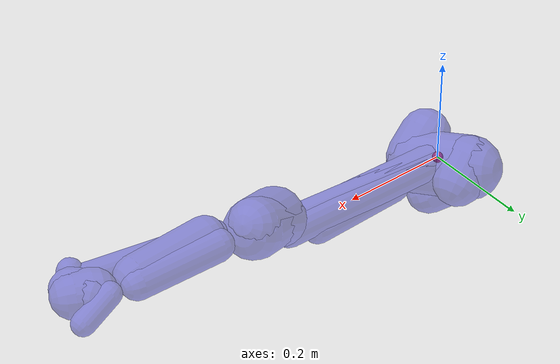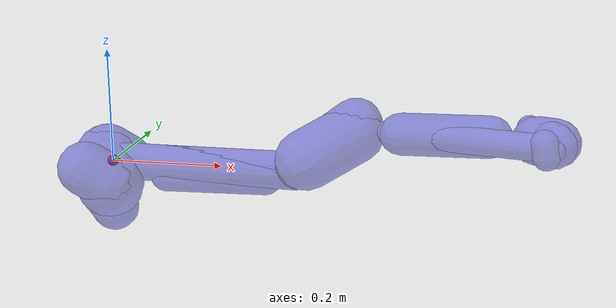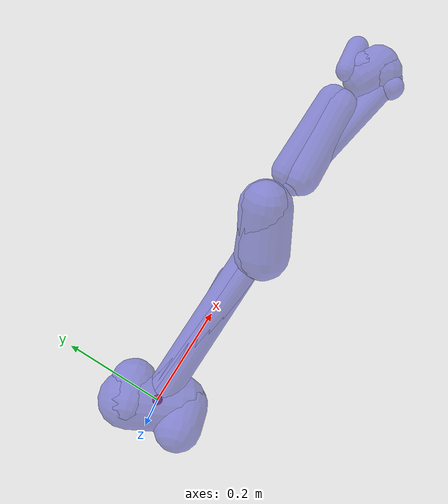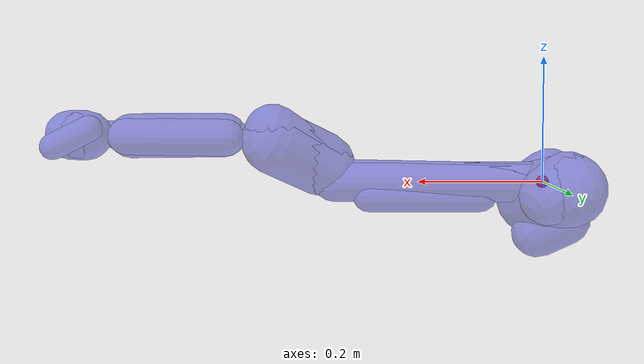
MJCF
<mujoco model="spot arm">
  <compiler angle="radian"/>
  <option integrator="implicitfast" cone="elliptic" impratio="100"/>
  <visual>
    <global ellipsoidinertia="true"/>
  </visual>
  <asset>
    <material name="BlackAbs" rgba="0.1 0.1 0.1 1"/>
    <material name="wrap" rgba="0.878431 0.666666 0.227450 1"/>
    <mesh name="arm_link_sh0" file="meshes/arm_link_sh0.obj"/>
    <mesh name="arm_link_sh1_0" file="meshes/arm_link_sh1_0.obj"/>
    <mesh name="arm_link_sh1_1" file="meshes/arm_link_sh1_1.obj"/>
    <mesh name="arm_link_hr0" file="meshes/arm_link_hr0.obj"/>
    <mesh name="arm_link_el0" file="meshes/arm_link_el0.obj"/>
    <mesh name="arm_link_el1_0" file="meshes/arm_link_el1_0.obj"/>
    <mesh name="arm_link_el1_1" file="meshes/arm_link_el1_1.obj"/>
    <mesh name="arm_link_wr0_0" file="meshes/arm_link_wr0_0.obj"/>
    <mesh name="arm_link_wr0_1" file="meshes/arm_link_wr0_1.obj"/>
    <mesh name="arm_link_sh0_base_coll" file="meshes/arm_link_sh0_base.obj"/>
    <mesh name="arm_link_sh0_left_motor_coll" file="meshes/arm_link_sh0_left_motor.obj"/>
    <mesh name="arm_link_sh0_right_motor_coll" file="meshes/arm_link_sh0_right_motor.obj"/>
    <mesh name="arm_link_hr0_coll" file="meshes/arm_link_hr0_coll.obj"/>
    <mesh name="arm_link_el0_coll" file="meshes/arm_link_el0_coll.obj"/>
    <mesh name="arm_link_el1_main_coll" file="meshes/arm_link_el1_main.obj"/>
    <mesh name="arm_link_el1_lip_coll" file="meshes/arm_link_el1_lip.obj"/>
    <mesh name="arm_link_wr0_coll" file="meshes/arm_link_wr0.obj"/>
  </asset>
  <default>
    <default class="spot_arm">
      <geom solref="0.004 1"/>
      <joint actuatorfrcrange="-1000 1000"/>
      <position kp="500" kv="40" inheritrange="1"/>
      <motor ctrlrange="-33.5 33.5" ctrllimited="true"/>
    </default>
    <default class="spot_arm_visual">
      <joint actuatorfrcrange="-1000 1000"/>
      <position kp="500" kv="40" inheritrange="1"/>
      <geom group="1" type="mesh" contype="0" conaffinity="0" solref="0.004 1"/>
    </default>
    <default class="spot_arm_collision">
      <joint actuatorfrcrange="-1000 1000"/>
      <position kp="500" kv="40" inheritrange="1"/>
      <geom group="0" type="mesh" solref="0.004 1"/>
    </default>
  </default>
  <worldbody>
    <body name="base" pos="0 0 0">
      <body name="arm_link_sh0" pos="0 0 0">
        <site name="right_center" pos="0 0 0" size="0.01" rgba="1 0.3 0.3 1" group="2"/>
        <inertial pos="-0.0123727 -4.52114e-05 -0.021032" quat="0.707107 0.707107 0 0" mass="2.3364" diaginertia="0.0090143 0.00778748 0.0058351"/>
        <joint name="arm_sh0" axis="0 0 1" range="-2.61799 3.14159"/>
        <geom material="BlackAbs" class="spot_arm_visual" rgba="0.2 0.2 0.8 0.5" type="capsule" pos="-0.011821 0.005452 -0.019226" quat="0.627623 0.707951 0.323875 0.000000" size="0.058716 0.050857"/>
        <geom class="spot_arm_collision" type="capsule" pos="-0.013899 0.001042 -0.070806" quat="0.518994 0.516899 0.680779 0.000000" size="0.041250 0.026800" rgba="0.2 0.2 0.8 0.5"/>
        <geom class="spot_arm_collision" type="capsule" pos="-0.013390 0.053024 -0.005173" quat="0.469976 -0.290060 0.833660 0.000000" size="0.046700 0.020071" rgba="0.2 0.2 0.8 0.5"/>
        <geom class="spot_arm_collision" type="capsule" pos="-0.005870 -0.057827 -0.010397" quat="0.481107 -0.221473 0.848225 0.000000" size="0.047277 0.024408" rgba="0.2 0.2 0.8 0.5"/>
        <body name="arm_link_sh1">
          <inertial pos="2.41764e-05 2.41161e-06 -1.00591e-05" quat="1 1 -1 1" mass="0.2596" diaginertia="0.00020385 0.000202928 0.000170786"/>
          <joint name="arm_sh1" axis="0 1 0" range="-3.14159 0.523599"/>
          <geom material="wrap" class="spot_arm_visual" type="capsule" pos="0.189143 0.000261 -0.021798" quat="0.705025 0.030152 -0.708541 0.000000" size="0.026979 0.089854" rgba="0.2 0.2 0.8 0.5"/>
          <geom material="BlackAbs" class="spot_arm_visual" type="capsule" pos="0.168913 -0.002070 0.007118" quat="0.701023 -0.039055 -0.712068 0.000000" size="0.026229 0.172902" rgba="0.2 0.2 0.8 0.5"/>
          <body name="arm_link_hr0">
            <inertial pos="0.17047 -0.0019251 4.48389e-05" quat="0 1 0 1" mass="1e-06" diaginertia="1.16111e-08 1.14871e-08 6.31263e-10"/>
            <geom class="spot_arm_collision" type="capsule" pos="0.169055 -0.002162 0.000078" quat="0.707653 0.014605 0.706409 0.000000" size="0.032635 0.166504" rgba="0.2 0.2 0.8 0.5"/>
            <body name="arm_link_el0" pos="0.3385 0 0">
              <inertial pos="0.0553741 0.000236034 0.048272" quat="1 1 1 1" mass="0.725" diaginertia="0.00200479 0.00197228 0.000821537"/>
              <joint name="arm_el0" axis="0 1 0" range="0 3.14159"/>
              <geom material="BlackAbs" class="spot_arm_visual" type="capsule" pos="0.049505 0.005172 0.049434" quat="0.878509 -0.194351 0.436405 0.000000" size="0.045078 0.058619" rgba="0.2 0.2 0.8 0.5"/>
              <geom class="spot_arm_collision" type="capsule" pos="0.053511 -0.000455 0.046599" quat="0.838625 -0.271224 0.472382 0.000000" size="0.052496 0.048607" rgba="0.2 0.2 0.8 0.5"/>
              <body name="arm_link_el1" pos="0.4033 0 0.075">
                <inertial pos="-0.125784 -0.0136845 0.000101579" quat="0 1 0 1" mass="0.725" diaginertia="0.00451592 0.00440245 0.000625481"/>
                <joint name="arm_el1" axis="1 0 0" range="-2.79253 2.79253"/>
                <geom material="wrap" class="spot_arm_visual" type="capsule" pos="-0.156192 0.022387 -0.001299" quat="0.703129 -0.009166 -0.711003 0.000000" size="0.029396 0.078777" rgba="0.2 0.2 0.8 0.5"/>
                <geom material="BlackAbs" class="spot_arm_visual" type="capsule" pos="-0.118156 -0.024876 0.000485" quat="0.709101 -0.129915 -0.693035 0.000000" size="0.022493 0.132307" rgba="0.2 0.2 0.8 0.5"/>
                <geom class="spot_arm_collision" type="capsule" pos="-0.156714 0.000501 0.000003" quat="0.705765 -0.044817 0.707027 0.000000" size="0.035727 0.073779" rgba="0.2 0.2 0.8 0.5"/>
                <geom class="spot_arm_collision" type="capsule" pos="-0.000277 -0.058461 -0.000014" quat="0.100095 0.003291 0.994972 0.000000" size="0.022318 0.010954" rgba="0.2 0.2 0.8 0.5"/>
                <body name="arm_link_wr0">
                  <inertial pos="0.00821068 -0.012051 3.14348e-05" quat="1 1 -1 1" mass="0.98" diaginertia="0.00123549 0.000985132 0.000891615"/>
                  <joint name="arm_wr0" axis="0 1 0" range="-1.8326 1.8326"/>
                  <geom material="wrap" class="spot_arm_visual" type="capsule" pos="0.007519 0.031487 -0.001612" quat="0.524579 -0.092520 0.846319 0.000000" size="0.021071 0.031326" rgba="0.2 0.2 0.8 0.5"/>
                  <geom material="BlackAbs" class="spot_arm_visual" type="capsule" pos="0.006354 -0.013993 -0.000009" quat="0.709554 -0.607010 -0.357870 0.000000" size="0.038671 0.015607" rgba="0.2 0.2 0.8 0.5"/>
                  <geom class="spot_arm_collision" type="capsule" pos="0.004394 -0.009896 0.000032" quat="0.708548 0.260861 0.655676 0.000000" size="0.040005 0.015874" rgba="0.2 0.2 0.8 0.5"/>
                  <body name="arm_link_wr1">
                    <inertial pos="0.125168 0.000101374 -0.013998" quat="1 1 1 1" mass="0.785" diaginertia="0.00176281 0.00168181 0.000767414"/>
                    <joint name="arm_wr1" axis="1 0 0" range="-2.87979 2.87979"/>
                    <body name="right_hand" pos="0.0 0.0 0.0" quat="1 0 0 0">
                      <camera mode="fixed" name="right_eye_in_hand" pos="0.05 0 0" quat="0.5 0.5 -0.5 -0.5" fovy="75"/>
                    </body>
                  </body>
                </body>
              </body>
            </body>
          </body>
        </body>
      </body>
    </body>
  </worldbody>
  <actuator>
    <motor class="spot_arm" name="arm_sh0" joint="arm_sh0"/>
    <motor class="spot_arm" name="arm_sh1" joint="arm_sh1"/>
    <motor class="spot_arm" name="arm_el0" joint="arm_el0"/>
    <motor class="spot_arm" name="arm_el1" joint="arm_el1"/>
    <motor class="spot_arm" name="arm_wr0" joint="arm_wr0"/>
    <motor class="spot_arm" name="arm_wr1" joint="arm_wr1"/>
  </actuator>
</mujoco>
